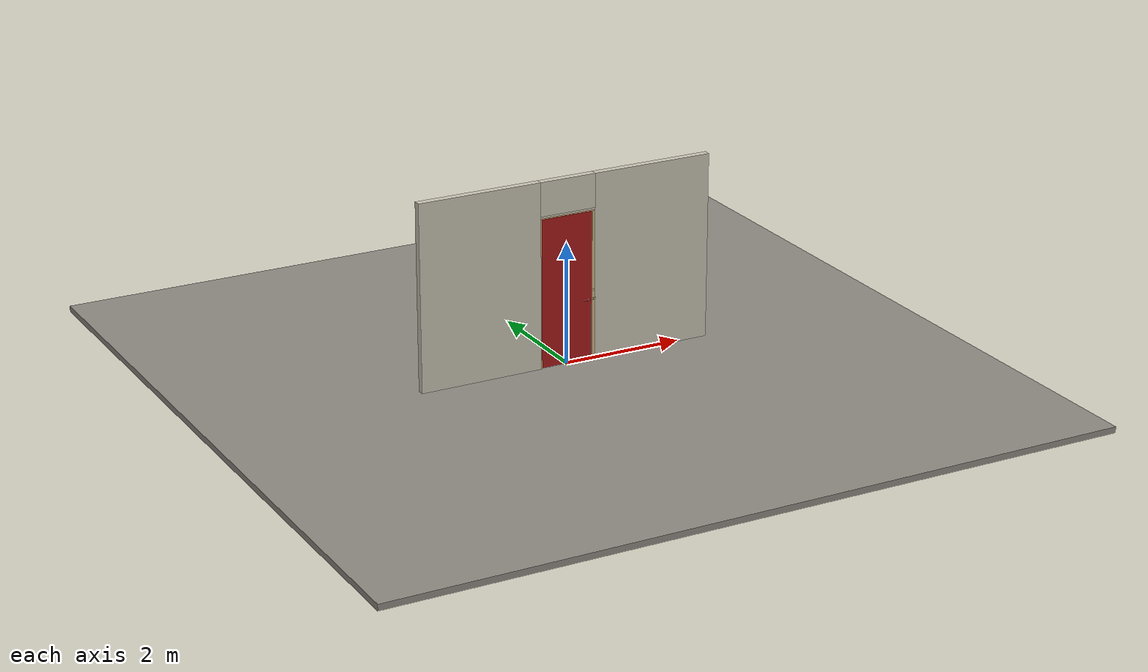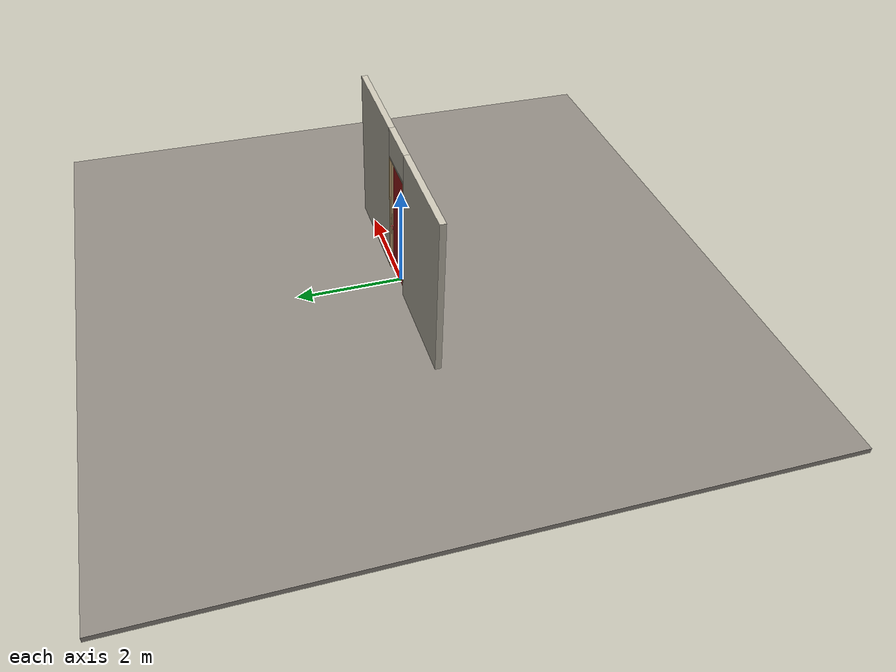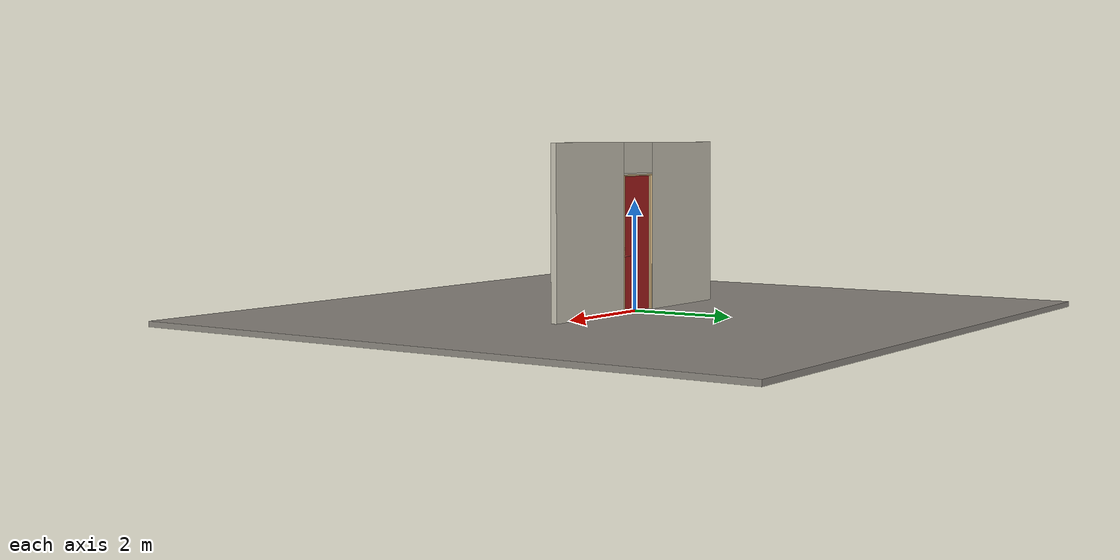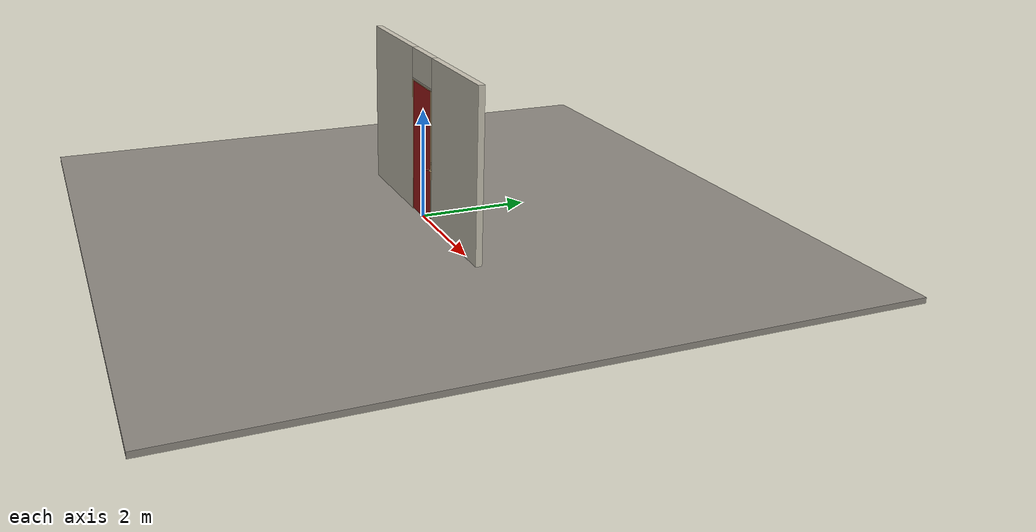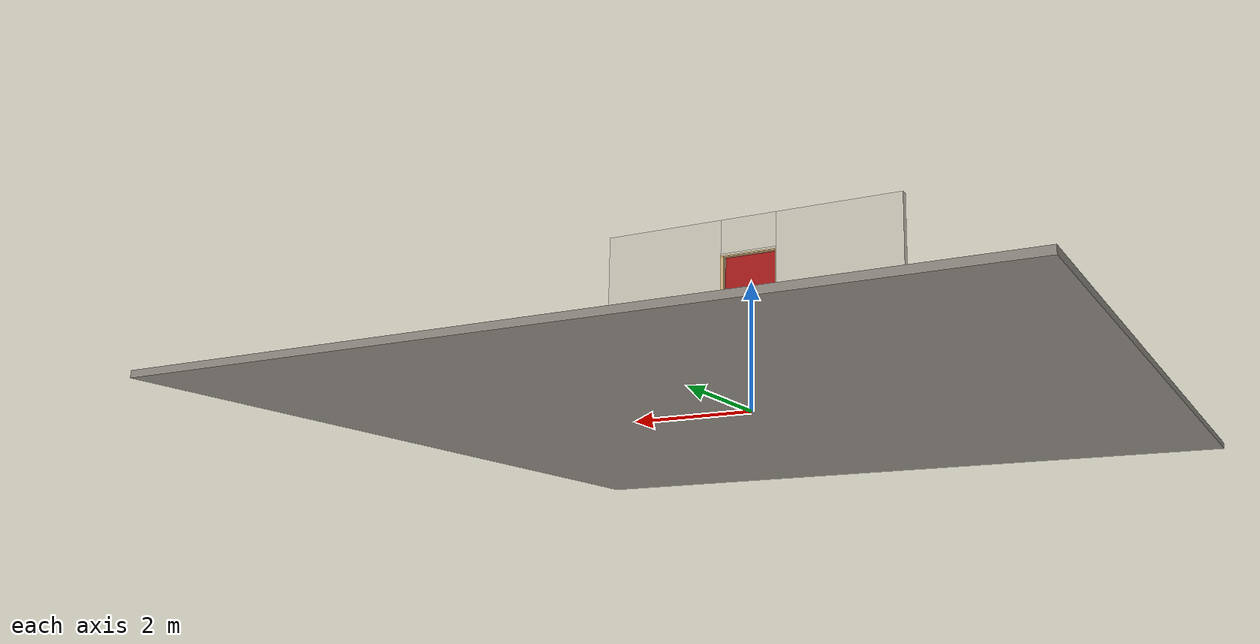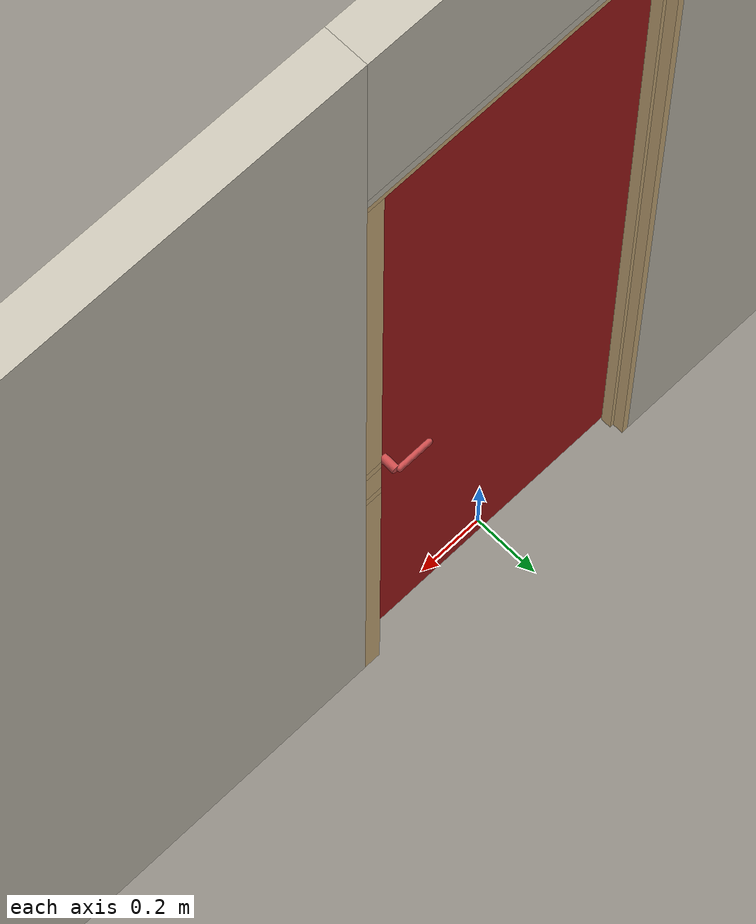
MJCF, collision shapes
<?xml version="1.0" ?>
<mujoco model="db0763_swing_single_minimal">
  <compiler angle="radian" meshdir="../../hardware" texturedir="../../textures" autolimits="true" inertiafromgeom="false"/>
  <option timestep="0.002" integrator="implicitfast" cone="elliptic" impratio="10" noslip_iterations="3">
    <flag multiccd="enable"/>
  </option>
  <size memory="16M"/>
  <default>
    <geom condim="4" solref="0.005 1" solimp="0.95 0.99 0.001"/>
    <joint solreflimit="0.005 1" solimplimit="0.95 0.99 0.001"/>
    <tendon solreflimit="0.005 1"/>
    <equality solref="0.002 1"/>
  </default>
  <visual>
    <headlight ambient="0.4 0.4 0.4" diffuse="0.7 0.7 0.7" specular="0.2 0.2 0.2"/>
    <quality shadowsize="4096"/>
    <map znear="0.01" zfar="60"/>
  </visual>
  <asset>
    <mesh name="lever_748f08efca" file="lever_748f08efca.obj"/>
    <material name="mat_floor" rgba="0.55 0.53 0.5 1" specular="0.2" shininess="0.15" reflectance="0"/>
    <material name="mat_wall" rgba="0.78 0.76 0.7 1" specular="0.2" shininess="0.1" reflectance="0"/>
    <material name="mat_leaf" rgba="0.65 0.1 0.1 1" specular="0.23" shininess="0.44" reflectance="0.02"/>
    <material name="mat_hinge" rgba="0.65 0.66 0.68 1" specular="0.74" shininess="0.5" reflectance="0.36"/>
    <material name="mat_op_chrome" rgba="0.9 0.9 0.92 1" specular="0.8" shininess="0.9" reflectance="0.4"/>
    <material name="mat_trim" rgba="0.85 0.66 0.3 1" specular="0.8" shininess="0.75" reflectance="0.4"/>
    <material name="mat_bolt" rgba="0.75 0.76 0.77 1" specular="0.8" shininess="0.65" reflectance="0.4"/>
    <material name="mat_deadbolt" rgba="0.85 0.66 0.3 1" specular="0.8" shininess="0.75" reflectance="0.4"/>
    <material name="mat_frame" rgba="0.82 0.7 0.5 1" specular="0.2" shininess="0.45" reflectance="0"/>
    <material name="mat_seal" rgba="0.1 0.1 0.1 1" specular="0.2" shininess="0.1" reflectance="0"/>
    <material name="mat_drip" rgba="0.8 0.81 0.83 1" specular="0.8" shininess="0.6" reflectance="0.4"/>
    <texture name="skybox" type="skybox" builtin="gradient" rgb1="0.6 0.7 0.85" rgb2="0.9 0.92 0.95" width="256" height="256"/>
  </asset>
  <worldbody>
    <light name="sun" pos="1.5 -2.5 4" dir="-0.3 0.5 -0.8" directional="true" diffuse="0.8 0.8 0.8" specular="0.3 0.3 0.3" castshadow="true"/>
    <light name="fill" pos="-1.5 2.5 3" dir="0.3 -0.5 -0.7" directional="true" diffuse="0.35 0.35 0.4" castshadow="false"/>
    <camera name="robot_view" pos="0 -2.894312 2.043887" xyaxes="1 0 0 0 0.26963 0.962964" fovy="52"/>
    <camera name="far_view" pos="0 2.951313 2.043887" xyaxes="-1 0 0 0 -0.26963 0.962964" fovy="52"/>
    <camera name="iso" pos="2.221337 -2.426662 2.511538" xyaxes="0.741536 0.670913 0 -0.242917 0.268487 0.932151" fovy="46"/>
    <camera name="detail_handle" pos="0.4664 -0.877 1.296" xyaxes="0.97561 0.219512 0 -0.070934 0.315262 0.94635" fovy="38"/>
    <geom name="floor" type="box" size="6 6 0.05" pos="0 0 -0.05" material="mat_floor" group="0" contype="1" conaffinity="1" friction="0.8 0.005 0.0001" density="2400"/>
    <geom name="wall_left" type="box" size="1.0225 0.0575 1.5255" pos="-1.4775 0.0285 1.5255" material="mat_wall" group="0" contype="1" conaffinity="1" friction="0.6 0.005 0.0001" density="800"/>
    <geom name="wall_right" type="box" size="1.0075 0.0575 1.5255" pos="1.4925 0.0285 1.5255" material="mat_wall" group="0" contype="1" conaffinity="1" friction="0.6 0.005 0.0001" density="800"/>
    <geom name="wall_header" type="box" size="0.47 0.0575 0.2755" pos="0.015 0.0285 2.7755" material="mat_wall" group="0" contype="1" conaffinity="1" friction="0.6 0.005 0.0001" density="800"/>
    <geom name="jamb_hinge" type="box" size="0.0095 0.0575 1.2255" pos="-0.4455 0.0285 1.2255" material="mat_frame" group="0" contype="1" conaffinity="1" friction="0.6 0.005 0.0001" density="400"/>
    <geom name="strike_1016_wall_n" type="box" size="0.0245 0.03975 0.015" pos="0.4605 0.04625 1.016" material="mat_frame" group="0" contype="1" conaffinity="1" friction="0.6 0.005 0.0001" density="400"/>
    <geom name="strike_1016_wall_p" type="box" size="0.0245 0.008 0.015" pos="0.4605 -0.0145 1.016" material="mat_frame" group="0" contype="1" conaffinity="1" friction="0.6 0.005 0.0001" density="400"/>
    <geom name="strike_1016_ramp" type="box" size="0.0245 0.016771 0.015" pos="0.465413 -0.026543 1.016" quat="0.973249 0 0 0.229753" material="mat_frame" group="0" contype="1" conaffinity="1" friction="0.12 0.005 0.0001" density="400"/>
    <geom name="strike_1016_back" type="box" size="0.0155 0.0065 0.015" pos="0.4695 0 1.016" material="mat_frame" group="0" contype="1" conaffinity="1" friction="0.6 0.005 0.0001" density="400"/>
    <geom name="strike_1156_wall_n" type="box" size="0.0245 0.03825 0.0155" pos="0.4605 0.04775 1.156" material="mat_frame" group="0" contype="1" conaffinity="1" friction="0.6 0.005 0.0001" density="400"/>
    <geom name="strike_1156_wall_p" type="box" size="0.0245 0.00975 0.0155" pos="0.4605 -0.01925 1.156" material="mat_frame" group="0" contype="1" conaffinity="1" friction="0.6 0.005 0.0001" density="400"/>
    <geom name="strike_1156_back" type="box" size="0.0098 0.0095 0.0155" pos="0.4752 0 1.156" material="mat_frame" group="0" contype="1" conaffinity="1" friction="0.6 0.005 0.0001" density="400"/>
    <geom name="jamb_strike_0" type="box" size="0.0245 0.0575 0.5005" pos="0.4605 0.0285 0.5005" material="mat_frame" group="0" contype="1" conaffinity="1" friction="0.6 0.005 0.0001" density="400"/>
    <geom name="jamb_strike_1" type="box" size="0.0245 0.0575 0.05475" pos="0.4605 0.0285 1.08575" material="mat_frame" group="0" contype="1" conaffinity="1" friction="0.6 0.005 0.0001" density="400"/>
    <geom name="jamb_strike_2" type="box" size="0.0245 0.0575 0.63975" pos="0.4605 0.0285 1.81125" material="mat_frame" group="0" contype="1" conaffinity="1" friction="0.6 0.005 0.0001" density="400"/>
    <geom name="jamb_head" type="box" size="0.47 0.0575 0.0095" pos="0.015 0.0285 2.4605" material="mat_frame" group="0" contype="1" conaffinity="1" friction="0.6 0.005 0.0001" density="400"/>
    <geom name="head_stud" type="box" size="0.47 0.0575 0.015" pos="0.015 0.0285 2.485" material="mat_wall" group="0" contype="1" conaffinity="1" friction="0.6 0.005 0.0001" density="500"/>
    <geom name="stop_hinge" type="box" size="0.0055 0.016 1.2255" pos="-0.4305 0.0385 1.2255" material="mat_frame" group="0" contype="1" conaffinity="1" friction="0.6 0.005 0.0001" density="400"/>
    <geom name="stop_strike" type="box" size="0.0055 0.016 1.2255" pos="0.4305 0.0385 1.2255" material="mat_frame" group="0" contype="1" conaffinity="1" friction="0.6 0.005 0.0001" density="400"/>
    <geom name="stop_head" type="box" size="0.436 0.016 0.0055" pos="0 0.0385 2.4455" material="mat_frame" group="0" contype="1" conaffinity="1" friction="0.6 0.005 0.0001" density="400"/>
    <site name="approach_point" pos="0 -1.5 0" quat="1 0 0 0" size="0.05" rgba="0.2 0.9 0.2 0.5" group="4"/>
    <site name="goal_point" pos="0 1.5 0" quat="1 0 0 0" size="0.05" rgba="0.2 0.9 0.2 0.5" group="4"/>
    <site name="door_plane_center" pos="0 0 1.2255" quat="1 0 0 0" size="0.02" rgba="0.2 0.9 0.2 0.5" group="4"/>
    <body name="leaf" pos="-0.436 0 0">
      <inertial pos="0.435 0 1.228" mass="29.969412" quat="-0.5 0.5 0.5 0.5" diaginertia="1.869172273 14.849294417 16.708796559"/>
      <joint name="leaf_hinge" type="hinge" axis="0 0 -1" pos="0.003 -0.029 0" limited="true" range="0 1.745329" solreflimit="0.02 1" damping="0.295361" frictionloss="1.389659" armature="0.02"/>
      <geom name="leaf_slab" type="box" size="0.432 0.022 1.219" pos="0.435 0 1.228" material="mat_leaf" group="0" contype="1" conaffinity="1" friction="0.4 0.005 0.0001" density="1"/>
      <site name="leaf_edge_mid" pos="0.867 0 1.219" quat="1 0 0 0" size="0.02" rgba="0.2 0.9 0.2 0.5" group="4"/>
      <body name="leaf_handle" pos="0.812 0 1.016">
        <inertial pos="-0.025809 0 0" mass="0.794529" quat="0 0.707107 0.707107 0" diaginertia="0.001153119 0.003205607 0.004222855"/>
        <joint name="leaf_handle_hinge" type="hinge" axis="0 -1 0" limited="true" range="0 0.87" damping="0.205085" frictionloss="0.04" stiffness="0.9" springref="-0.444444" armature="0.01"/>
        <geom name="leaf_handle_lever_n" type="mesh" mesh="lever_748f08efca" pos="0 -0.022 0" quat="0.707107 0.707107 0 0" material="mat_op_chrome" group="1" contype="0" conaffinity="0" density="3000"/>
        <geom name="leaf_handle_lever_col_n" type="capsule" size="0.008 0.048" pos="-0.056 -0.077 0" quat="0.707107 0 -0.707107 0" material="mat_op_chrome" group="3" contype="1" conaffinity="1" rgba="0.8 0.3 0.3 0.25" friction="0.7 0.01 0.0001" density="3000"/>
        <geom name="leaf_handle_hub_col_n" type="cylinder" size="0.012 0.022" pos="0 -0.052 0" quat="0.707107 -0.707107 0 0" material="mat_op_chrome" group="3" contype="1" conaffinity="1" rgba="0.8 0.3 0.3 0.25" friction="0.6 0.005 0.0001" density="3000"/>
        <geom name="leaf_handle_lever_p" type="mesh" mesh="lever_748f08efca" pos="0 0.022 0" quat="-0.707107 0.707107 0 0" material="mat_op_chrome" group="1" contype="0" conaffinity="0" density="3000"/>
        <geom name="leaf_handle_lever_col_p" type="capsule" size="0.008 0.048" pos="-0.056 0.077 0" quat="0.707107 0 -0.707107 0" material="mat_op_chrome" group="3" contype="1" conaffinity="1" rgba="0.8 0.3 0.3 0.25" friction="0.7 0.01 0.0001" density="3000"/>
        <geom name="leaf_handle_hub_col_p" type="cylinder" size="0.012 0.022" pos="0 0.052 0" quat="0.707107 -0.707107 0 0" material="mat_op_chrome" group="3" contype="1" conaffinity="1" rgba="0.8 0.3 0.3 0.25" friction="0.6 0.005 0.0001" density="3000"/>
        <site name="leaf_handle_grip_n" pos="-0.0896 -0.077 0" quat="1 0 0 0" size="0.012" rgba="0.2 0.9 0.2 0.5" group="4"/>
        <site name="leaf_handle_grip_p" pos="-0.0896 0.077 0" quat="1 0 0 0" size="0.012" rgba="0.2 0.9 0.2 0.5" group="4"/>
      </body>
      <body name="leaf_latch_bolt" pos="0.867 0 1.016">
        <inertial pos="-0.008 0 0" mass="0.027149" quat="0 0 0.707107 0.707107" diaginertia="0.000000328 0.000003943 0.000003943"/>
        <joint name="leaf_latch_bolt_slide" type="slide" axis="-1 0 0" limited="true" range="0 0.014" damping="2" frictionloss="0.3" stiffness="400" springref="-0.01" armature="0.1"/>
        <geom name="leaf_latch_bolt_capsule" type="capsule" size="0.005 0.017" pos="-0.008 0 0" quat="0.707107 0 0.707107 0" material="mat_bolt" group="0" contype="1" conaffinity="1" friction="0.2 0.005 0.0001" density="8500"/>
      </body>
    </body>
  </worldbody>
  <tendon>
    <fixed name="leaf_latch_bolt_coupling" limited="true" range="0 10">
      <joint joint="leaf_latch_bolt_slide" coef="1"/>
      <joint joint="leaf_handle_hinge" coef="-0.017722"/>
    </fixed>
  </tendon>
  <sensor>
    <jointpos name="leaf_hinge_pos" joint="leaf_hinge"/>
    <jointvel name="leaf_hinge_vel" joint="leaf_hinge"/>
    <jointpos name="leaf_handle_hinge_pos" joint="leaf_handle_hinge"/>
    <jointvel name="leaf_handle_hinge_vel" joint="leaf_handle_hinge"/>
    <jointpos name="leaf_latch_bolt_slide_pos" joint="leaf_latch_bolt_slide"/>
    <jointvel name="leaf_latch_bolt_slide_vel" joint="leaf_latch_bolt_slide"/>
  </sensor>
</mujoco>
